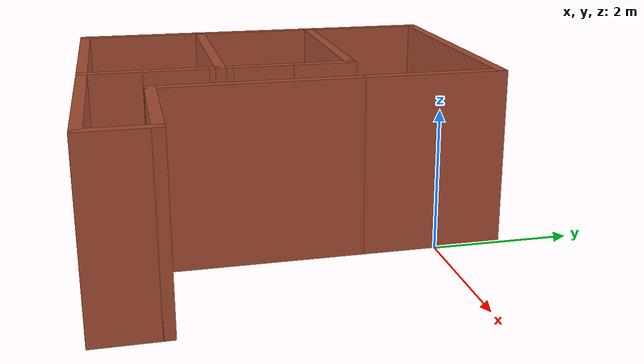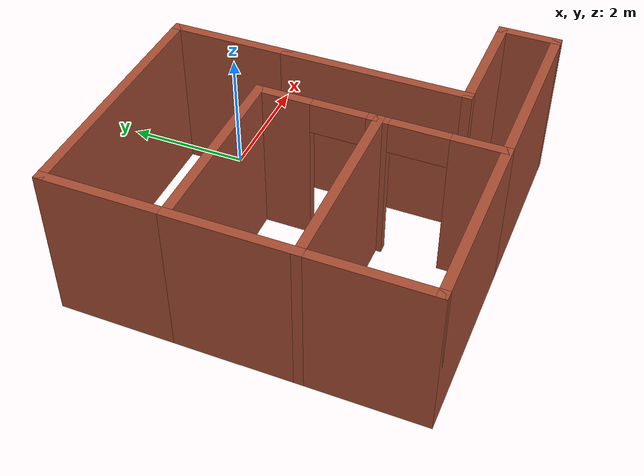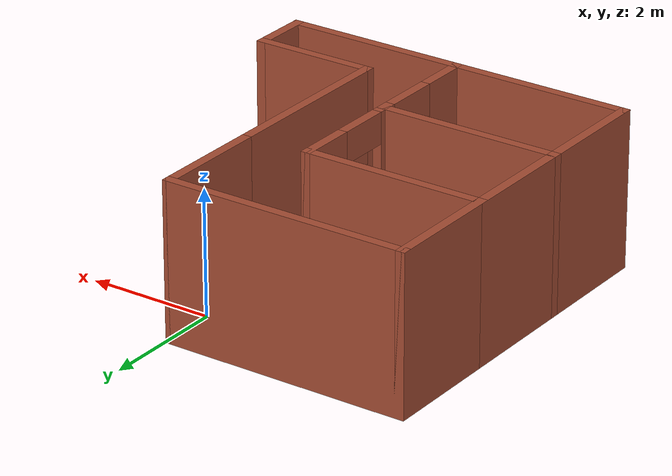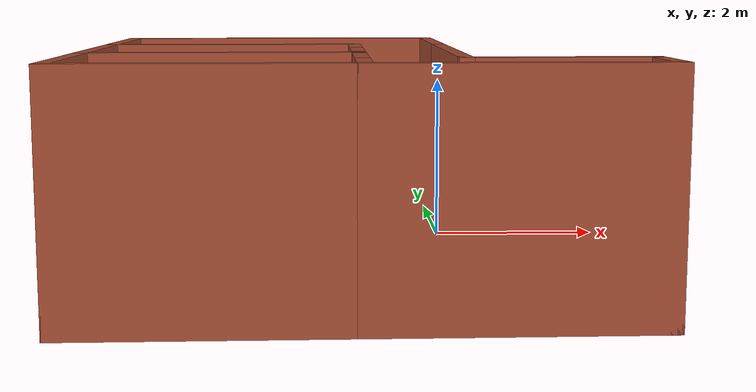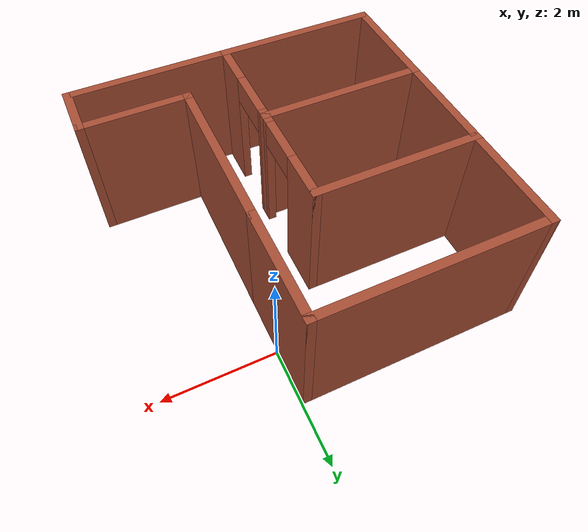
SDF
<?xml version='1.0'?>
<sdf version='1.7'>
  <model name='my_house'>
    <pose>-1.09 -1.885 0 0 -0 0</pose>
    <link name='Wall_0'>
      <collision name='Wall_0_Collision'>
        <geometry>
          <box>
            <size>2 0.15 2.5</size>
          </box>
        </geometry>
        <pose>0 0 1.25 0 -0 0</pose>
      </collision>
      <visual name='Wall_0_Visual'>
        <pose>0 0 1.25 0 -0 0</pose>
        <geometry>
          <box>
            <size>2 0.15 2.5</size>
          </box>
        </geometry>
        <material>
          <script>
            <uri>file://media/materials/scripts/gazebo.material</uri>
            <name>Gazebo/Bricks</name>
          </script>
          <ambient>1 1 1 1</ambient>
        </material>
        <meta>
          <layer>0</layer>
        </meta>
      </visual>
      <pose>-2.85 0 0 0 -0 1.5708</pose>
    </link>
    <link name='Wall_1'>
      <collision name='Wall_1_Collision'>
        <geometry>
          <box>
            <size>3 0.15 2.5</size>
          </box>
        </geometry>
        <pose>0 0 1.25 0 -0 0</pose>
      </collision>
      <visual name='Wall_1_Visual'>
        <pose>0 0 1.25 0 -0 0</pose>
        <geometry>
          <box>
            <size>3 0.15 2.5</size>
          </box>
        </geometry>
        <material>
          <script>
            <uri>file://media/materials/scripts/gazebo.material</uri>
            <name>Gazebo/Bricks</name>
          </script>
          <ambient>1 1 1 1</ambient>
        </material>
        <meta>
          <layer>0</layer>
        </meta>
      </visual>
      <pose>-1.425 0.925 0 0 -0 0</pose>
    </link>
    <link name='Wall_11'>
      <collision name='Wall_11_Collision'>
        <geometry>
          <box>
            <size>3 0.15 2.5</size>
          </box>
        </geometry>
        <pose>0 0 1.25 0 -0 0</pose>
      </collision>
      <visual name='Wall_11_Visual'>
        <pose>0 0 1.25 0 -0 0</pose>
        <geometry>
          <box>
            <size>3 0.15 2.5</size>
          </box>
        </geometry>
        <material>
          <script>
            <uri>file://media/materials/scripts/gazebo.material</uri>
            <name>Gazebo/Bricks</name>
          </script>
          <ambient>1 1 1 1</ambient>
        </material>
        <meta>
          <layer>0</layer>
        </meta>
      </visual>
      <pose>1.425 -2.775 0 0 -0 0</pose>
    </link>
    <link name='Wall_13'>
      <collision name='Wall_13_Collision'>
        <geometry>
          <box>
            <size>1 0.15 2.5</size>
          </box>
        </geometry>
        <pose>0 0 1.25 0 -0 0</pose>
      </collision>
      <visual name='Wall_13_Visual'>
        <pose>0 0 1.25 0 -0 0</pose>
        <geometry>
          <box>
            <size>1 0.15 2.5</size>
          </box>
        </geometry>
        <material>
          <script>
            <uri>file://media/materials/scripts/gazebo.material</uri>
            <name>Gazebo/Bricks</name>
          </script>
          <ambient>1 1 1 1</ambient>
        </material>
        <meta>
          <layer>0</layer>
        </meta>
      </visual>
      <pose>2.85 -2.35 0 0 -0 1.5708</pose>
    </link>
    <link name='Wall_14'>
      <collision name='Wall_14_Collision'>
        <geometry>
          <box>
            <size>2 0.15 2.5</size>
          </box>
        </geometry>
        <pose>0 0 1.25 0 -0 0</pose>
      </collision>
      <visual name='Wall_14_Visual'>
        <pose>0 0 1.25 0 -0 0</pose>
        <geometry>
          <box>
            <size>2 0.15 2.5</size>
          </box>
        </geometry>
        <material>
          <script>
            <uri>file://media/materials/scripts/gazebo.material</uri>
            <name>Gazebo/Bricks</name>
          </script>
          <ambient>1 1 1 1</ambient>
        </material>
        <meta>
          <layer>0</layer>
        </meta>
      </visual>
      <pose>1.925 -1.925 0 0 -0 3.14159</pose>
    </link>
    <link name='Wall_15'>
      <collision name='Wall_15_Collision'>
        <geometry>
          <box>
            <size>3 0.15 2.5</size>
          </box>
        </geometry>
        <pose>0 0 1.25 0 -0 0</pose>
      </collision>
      <visual name='Wall_15_Visual'>
        <pose>0 0 1.25 0 -0 0</pose>
        <geometry>
          <box>
            <size>3 0.15 2.5</size>
          </box>
        </geometry>
        <material>
          <script>
            <uri>file://media/materials/scripts/gazebo.material</uri>
            <name>Gazebo/Bricks</name>
          </script>
          <ambient>1 1 1 1</ambient>
        </material>
        <meta>
          <layer>0</layer>
        </meta>
      </visual>
      <pose>1 -0.5 0 0 -0 1.5708</pose>
    </link>
    <link name='Wall_17'>
      <collision name='Wall_17_Collision'>
        <geometry>
          <box>
            <size>2 0.15 2.5</size>
          </box>
        </geometry>
        <pose>0 0 1.25 0 -0 0</pose>
      </collision>
      <visual name='Wall_17_Visual'>
        <pose>0 0 1.25 0 -0 0</pose>
        <geometry>
          <box>
            <size>2 0.15 2.5</size>
          </box>
        </geometry>
        <material>
          <script>
            <uri>file://media/materials/scripts/gazebo.material</uri>
            <name>Gazebo/Bricks</name>
          </script>
          <ambient>1 1 1 1</ambient>
        </material>
        <meta>
          <layer>0</layer>
        </meta>
      </visual>
      <pose>-2.85 1.85 0 0 -0 1.5708</pose>
    </link>
    <link name='Wall_18'>
      <collision name='Wall_18_Collision'>
        <geometry>
          <box>
            <size>4 0.15 2.5</size>
          </box>
        </geometry>
        <pose>0 0 1.25 0 -0 0</pose>
      </collision>
      <visual name='Wall_18_Visual'>
        <pose>0 0 1.25 0 -0 0</pose>
        <geometry>
          <box>
            <size>4 0.15 2.5</size>
          </box>
        </geometry>
        <material>
          <script>
            <uri>file://media/materials/scripts/gazebo.material</uri>
            <name>Gazebo/Bricks</name>
          </script>
          <ambient>1 1 1 1</ambient>
        </material>
        <meta>
          <layer>0</layer>
        </meta>
      </visual>
      <pose>-0.925 2.775 0 0 -0 0</pose>
    </link>
    <link name='Wall_19'>
      <collision name='Wall_19_Collision'>
        <geometry>
          <box>
            <size>2 0.15 2.5</size>
          </box>
        </geometry>
        <pose>0 0 1.25 0 -0 0</pose>
      </collision>
      <visual name='Wall_19_Visual'>
        <pose>0 0 1.25 0 -0 0</pose>
        <geometry>
          <box>
            <size>2 0.15 2.5</size>
          </box>
        </geometry>
        <material>
          <script>
            <uri>file://media/materials/scripts/gazebo.material</uri>
            <name>Gazebo/Bricks</name>
          </script>
          <ambient>1 1 1 1</ambient>
        </material>
        <meta>
          <layer>0</layer>
        </meta>
      </visual>
      <pose>1 1.85 0 0 -0 -1.5708</pose>
    </link>
    <link name='Wall_2'>
      <pose>0 0 0 0 -0 -1.5708</pose>
      <visual name='Wall_2_Visual_0'>
        <pose>-0.548178 0 1.25 0 -0 0</pose>
        <geometry>
          <box>
            <size>0.903645 0.15 2.5</size>
          </box>
        </geometry>
        <material>
          <script>
            <uri>file://media/materials/scripts/gazebo.material</uri>
            <name>Gazebo/Bricks</name>
          </script>
          <ambient>1 1 1 1</ambient>
        </material>
        <meta>
          <layer>0</layer>
        </meta>
      </visual>
      <collision name='Wall_2_Collision_0'>
        <geometry>
          <box>
            <size>0.903645 0.15 2.5</size>
          </box>
        </geometry>
        <pose>-0.548178 0 1.25 0 -0 0</pose>
      </collision>
      <visual name='Wall_2_Visual_1'>
        <pose>0.875736 0 1.25 0 -0 0</pose>
        <geometry>
          <box>
            <size>0.248529 0.15 2.5</size>
          </box>
        </geometry>
        <material>
          <script>
            <uri>file://media/materials/scripts/gazebo.material</uri>
            <name>Gazebo/Bricks</name>
          </script>
          <ambient>1 1 1 1</ambient>
        </material>
        <meta>
          <layer>0</layer>
        </meta>
      </visual>
      <collision name='Wall_2_Collision_1'>
        <geometry>
          <box>
            <size>0.248529 0.15 2.5</size>
          </box>
        </geometry>
        <pose>0.875736 0 1.25 0 -0 0</pose>
      </collision>
      <visual name='Wall_2_Visual_2'>
        <pose>0.327558 0 2.25 0 -0 0</pose>
        <geometry>
          <box>
            <size>0.847826 0.15 0.5</size>
          </box>
        </geometry>
        <material>
          <script>
            <uri>file://media/materials/scripts/gazebo.material</uri>
            <name>Gazebo/Bricks</name>
          </script>
          <ambient>1 1 1 1</ambient>
        </material>
        <meta>
          <layer>0</layer>
        </meta>
      </visual>
      <collision name='Wall_2_Collision_2'>
        <geometry>
          <box>
            <size>0.847826 0.15 0.5</size>
          </box>
        </geometry>
        <pose>0.327558 0 2.25 0 -0 0</pose>
      </collision>
    </link>
    <link name='Wall_3'>
      <collision name='Wall_3_Collision'>
        <geometry>
          <box>
            <size>3 0.15 2.5</size>
          </box>
        </geometry>
        <pose>0 0 1.25 0 -0 0</pose>
      </collision>
      <visual name='Wall_3_Visual'>
        <pose>0 0 1.25 0 -0 0</pose>
        <geometry>
          <box>
            <size>3 0.15 2.5</size>
          </box>
        </geometry>
        <material>
          <script>
            <uri>file://media/materials/scripts/gazebo.material</uri>
            <name>Gazebo/Bricks</name>
          </script>
          <ambient>1 1 1 1</ambient>
        </material>
        <meta>
          <layer>0</layer>
        </meta>
      </visual>
      <pose>-1.425 -0.925 0 0 -0 3.14159</pose>
    </link>
    <link name='Wall_5'>
      <collision name='Wall_5_Collision'>
        <geometry>
          <box>
            <size>2 0.15 2.5</size>
          </box>
        </geometry>
        <pose>0 0 1.25 0 -0 0</pose>
      </collision>
      <visual name='Wall_5_Visual'>
        <pose>0 0 1.25 0 -0 0</pose>
        <geometry>
          <box>
            <size>2 0.15 2.5</size>
          </box>
        </geometry>
        <material>
          <script>
            <uri>file://media/materials/scripts/gazebo.material</uri>
            <name>Gazebo/Bricks</name>
          </script>
          <ambient>1 1 1 1</ambient>
        </material>
        <meta>
          <layer>0</layer>
        </meta>
      </visual>
      <pose>-2.85 -1.85 0 0 -0 -1.5708</pose>
    </link>
    <link name='Wall_6'>
      <collision name='Wall_6_Collision'>
        <geometry>
          <box>
            <size>3 0.15 2.5</size>
          </box>
        </geometry>
        <pose>0 0 1.25 0 -0 0</pose>
      </collision>
      <visual name='Wall_6_Visual'>
        <pose>0 0 1.25 0 -0 0</pose>
        <geometry>
          <box>
            <size>3 0.15 2.5</size>
          </box>
        </geometry>
        <material>
          <script>
            <uri>file://media/materials/scripts/gazebo.material</uri>
            <name>Gazebo/Bricks</name>
          </script>
          <ambient>1 1 1 1</ambient>
        </material>
        <meta>
          <layer>0</layer>
        </meta>
      </visual>
      <pose>-1.425 -2.775 0 0 -0 0</pose>
    </link>
    <link name='Wall_9'>
      <pose>0 -1.85 0 0 -0 1.5708</pose>
      <visual name='Wall_9_Visual_0'>
        <pose>-0.565953 0 1.25 0 -0 0</pose>
        <geometry>
          <box>
            <size>0.868094 0.15 2.5</size>
          </box>
        </geometry>
        <material>
          <script>
            <uri>file://media/materials/scripts/gazebo.material</uri>
            <name>Gazebo/Bricks</name>
          </script>
          <ambient>1 1 1 1</ambient>
        </material>
        <meta>
          <layer>0</layer>
        </meta>
      </visual>
      <collision name='Wall_9_Collision_0'>
        <geometry>
          <box>
            <size>0.868094 0.15 2.5</size>
          </box>
        </geometry>
        <pose>-0.565953 0 1.25 0 -0 0</pose>
      </collision>
      <visual name='Wall_9_Visual_1'>
        <pose>0.884047 0 1.25 0 -0 0</pose>
        <geometry>
          <box>
            <size>0.231906 0.15 2.5</size>
          </box>
        </geometry>
        <material>
          <script>
            <uri>file://media/materials/scripts/gazebo.material</uri>
            <name>Gazebo/Bricks</name>
          </script>
          <ambient>1 1 1 1</ambient>
        </material>
        <meta>
          <layer>0</layer>
        </meta>
      </visual>
      <collision name='Wall_9_Collision_1'>
        <geometry>
          <box>
            <size>0.231906 0.15 2.5</size>
          </box>
        </geometry>
        <pose>0.884047 0 1.25 0 -0 0</pose>
      </collision>
      <visual name='Wall_9_Visual_2'>
        <pose>0.318094 0 2.25 0 -0 0</pose>
        <geometry>
          <box>
            <size>0.9 0.15 0.5</size>
          </box>
        </geometry>
        <material>
          <script>
            <uri>file://media/materials/scripts/gazebo.material</uri>
            <name>Gazebo/Bricks</name>
          </script>
          <ambient>1 1 1 1</ambient>
        </material>
        <meta>
          <layer>0</layer>
        </meta>
      </visual>
      <collision name='Wall_9_Collision_2'>
        <geometry>
          <box>
            <size>0.9 0.15 0.5</size>
          </box>
        </geometry>
        <pose>0.318094 0 2.25 0 -0 0</pose>
      </collision>
    </link>
    <static>1</static>
  </model>
</sdf>
